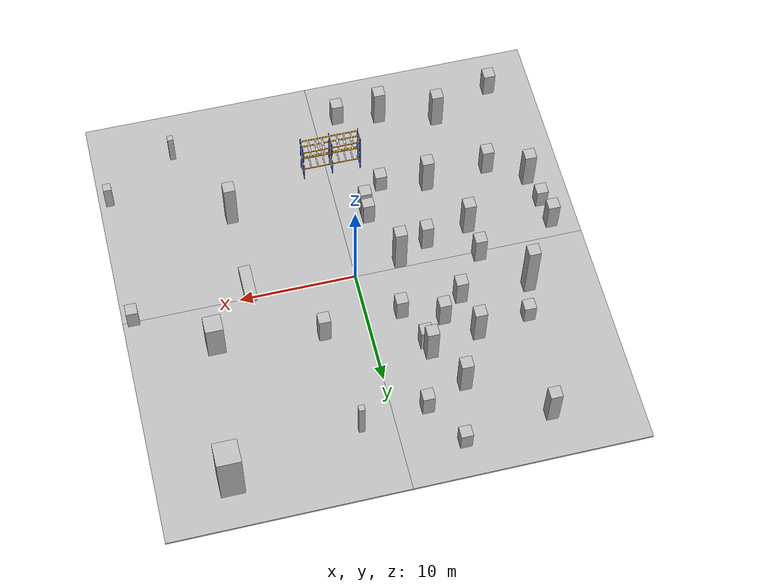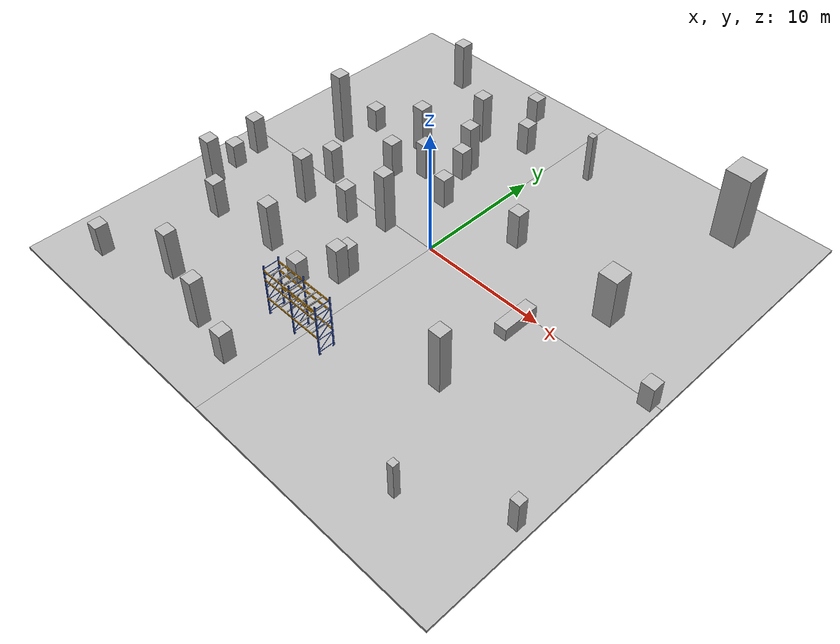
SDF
<sdf version="1.4">
 <world name="default">
  <include><uri>model://sun</uri></include>
  <model name="gd1">
   <static>1</static>
   <link name="chassis">
    <pose>10 10 -0.1 0 0 0</pose>
    <collision name="collision"><geometry><box><size>20 20 0.2</size></box></geometry></collision>
    <visual name="visual">
     <geometry>
      <mesh><uri>model://ground_surface/meshes/simple_box.dae</uri><scale>20 20 0.2</scale></mesh>
     </geometry>
     <material>
      <script>
       <uri>model://ground_surface/materials/scripts</uri>
       <uri>model://ground_surface/materials/textures</uri>
       <name>BrickBox/Ground</name>
      </script>
     </material>
    </visual>
   </link>
  </model>
  <model name="gd2">
   <static>1</static>
   <link name="chassis">
    <pose>10 -10 -0.1 0 0 0</pose>
    <collision name="collision"><geometry><box><size>20 20 0.2</size></box></geometry></collision>
    <visual name="visual">
     <geometry>
      <mesh><uri>model://ground_surface/meshes/simple_box.dae</uri><scale>20 20 0.2</scale></mesh>
     </geometry>
     <material>
      <script>
       <uri>model://ground_surface/materials/scripts</uri>
       <uri>model://ground_surface/materials/textures</uri>
       <name>BrickBox/Ground</name>
      </script>
     </material>
    </visual>
   </link>
  </model>
  <model name="gd3">
   <static>1</static>
   <link name="chassis">
    <pose>-10 10 -0.1 0 0 0</pose>
    <collision name="collision"><geometry><box><size>20 20 0.2</size></box></geometry></collision>
    <visual name="visual">
     <geometry>
      <mesh><uri>model://ground_surface/meshes/simple_box.dae</uri><scale>20 20 0.2</scale></mesh>
     </geometry>
     <material>
      <script>
       <uri>model://ground_surface/materials/scripts</uri>
       <uri>model://ground_surface/materials/textures</uri>
       <name>BrickBox/Ground</name>
      </script>
     </material>
    </visual>
   </link>
  </model>
  <model name="gd4">
   <static>1</static>
   <link name="chassis">
    <pose>-10 -10 -0.1 0 0 0</pose>
    <collision name="collision"><geometry><box><size>20 20 0.2</size></box></geometry></collision>
    <visual name="visual">
     <geometry>
      <mesh><uri>model://ground_surface/meshes/simple_box.dae</uri><scale>20 20 0.2</scale></mesh>
     </geometry>
     <material>
      <script>
       <uri>model://ground_surface/materials/scripts</uri>
       <uri>model://ground_surface/materials/textures</uri>
       <name>BrickBox/Ground</name>
      </script>
     </material>
    </visual>
   </link>
  </model>
  <model name="bb1">
   <static>1</static>
   <link name="chassis">
    <pose>12.88407 -15.56919 1.5 0 -0 0</pose>
    <collision name="collision"><geometry><box><size>0.5 0.5 3</size></box></geometry></collision>
    <visual name="visual">
     <geometry><mesh><uri>model://brick_box_2/meshes/simple_box.dae</uri><scale>0.5 0.5 3</scale></mesh></geometry>
     <material>
      <script>
       <uri>model://brick_box_2/materials/scripts</uri>
       <uri>model://brick_box_2/materials/textures</uri>
       <name>BrickBox/Flower</name>
      </script>
     </material>
    </visual>
   </link>
  </model>
  <model name="bb2">
   <static>1</static>
   <link name="chassis">
    <pose>19.0671 -12.13179 1.25 0 -0 0</pose>
    <collision name="collision"><geometry><box><size>0.7 0.7 2.5</size></box></geometry></collision>
    <visual name="visual">
     <geometry>
      <mesh><uri>model://brick_box_1/meshes/simple_box.dae</uri><scale>0.7 0.7 2.5</scale></mesh>
     </geometry>
     <material>
      <script>
       <uri>model://brick_box_1/materials/scripts</uri>
       <uri>model://brick_box_1/materials/textures</uri>
       <name>BrickBox/Diffuse</name>
      </script>
     </material>
    </visual>
   </link>
  </model>
  <model name="bb3">
   <static>1</static>
   <link name="chassis">
    <pose>19.0671 -0.13179 1 0 -0 0</pose>
    <collision name="collision"><geometry><box><size>1 1 2</size></box></geometry></collision>
    <visual name="visual">
     <geometry><mesh><uri>model://brick_box_1/meshes/simple_box.dae</uri><scale>1 1 2</scale></mesh></geometry>
     <material>
      <script>
       <uri>model://brick_box_1/materials/scripts</uri>
       <uri>model://brick_box_1/materials/textures</uri>
       <name>BrickBox/Diffuse</name>
      </script>
     </material>
    </visual>
   </link>
  </model>
  <model name="bb4">
   <static>1</static>
   <link name="chassis">
    <pose>9.0671 -8.13179 2.5 0 -0 0</pose>
    <collision name="collision"><geometry><box><size>1 1 5</size></box></geometry></collision>
    <visual name="visual">
     <geometry><mesh><uri>model://brick_box_3/meshes/simple_box.dae</uri><scale>1 1 5</scale></mesh></geometry>
     <material>
      <script>
       <uri>model://brick_box_3/materials/scripts</uri>
       <uri>model://brick_box_3/materials/textures</uri>
       <name>BrickBox/Sea</name>
      </script>
     </material>
    </visual>
   </link>
  </model>
  <model name="bb5">
   <static>1</static>
   <link name="chassis">
    <pose>12.81419 3.85419 2 0 -0 0</pose>
    <collision name="collision"><geometry><box><size>1.5 1.5 4</size></box></geometry></collision>
    <visual name="visual">
     <geometry><mesh><uri>model://brick_box_2/meshes/simple_box.dae</uri><scale>1.5 1.5 4</scale></mesh></geometry>
     <material>
      <script>
       <uri>model://brick_box_2/materials/scripts</uri>
       <uri>model://brick_box_2/materials/textures</uri>
       <name>BrickBox/Flower</name>
      </script>
     </material>
    </visual>
   </link>
  </model>
  <model name="bb6">
   <static>1</static>
   <link name="chassis">
    <pose>-10.67108 -14.11682 2 0 -0 0</pose>
    <collision name="collision"><geometry><box><size>1 1 4</size></box></geometry></collision>
    <visual name="visual">
     <geometry><mesh><uri>model://brick_box_1/meshes/simple_box.dae</uri><scale>1 1 4</scale></mesh></geometry>
     <material>
      <script>
       <uri>model://brick_box_1/materials/scripts</uri>
       <uri>model://brick_box_1/materials/textures</uri>
       <name>BrickBox/Diffuse</name>
      </script>
     </material>
    </visual>
   </link>
  </model>
  <model name="bb7">
   <static>1</static>
   <link name="chassis">
    <pose>-13.67108 -8.11682 1.5 0 -0 0</pose>
    <collision name="collision"><geometry><box><size>1 1 3</size></box></geometry></collision>
    <visual name="visual">
     <geometry><mesh><uri>model://brick_box_2/meshes/simple_box.dae</uri><scale>1 1 3</scale></mesh></geometry>
     <material>
      <script>
       <uri>model://brick_box_2/materials/scripts</uri>
       <uri>model://brick_box_2/materials/textures</uri>
       <name>BrickBox/Flower</name>
      </script>
     </material>
    </visual>
   </link>
  </model>
  <model name="bb5">
   <static>1</static>
   <link name="chassis">
    <pose>-8.1 4.01925 1.5 0 -0 0</pose>
    <collision name="collision"><geometry><box><size>1 1 3</size></box></geometry></collision>
    <visual name="visual">
     <geometry><mesh><uri>model://brick_box_1/meshes/simple_box.dae</uri><scale>1 1 3</scale></mesh></geometry>
     <material>
      <script>
       <uri>model://brick_box_1/materials/scripts</uri>
       <uri>model://brick_box_1/materials/textures</uri>
       <name>BrickBox/Diffuse</name>
      </script>
     </material>
    </visual>
   </link>
  </model>
  <model name="bb9">
   <static>1</static>
   <link name="chassis">
    <pose>-14 4.25 3 0 -0 0</pose>
    <collision name="collision"><geometry><box><size>1 1 6</size></box></geometry></collision>
    <visual name="visual">
     <geometry><mesh><uri>model://brick_box_3/meshes/simple_box.dae</uri><scale>1 1 6</scale></mesh></geometry>
     <material>
      <script>
       <uri>model://brick_box_3/materials/scripts</uri>
       <uri>model://brick_box_3/materials/textures</uri>
       <name>BrickBox/Sea</name>
      </script>
     </material>
    </visual>
   </link>
  </model>
  <model name="bb10">
   <static>1</static>
   <link name="chassis">
    <pose>14 16.25 3 0 -0 0</pose>
    <collision name="collision"><geometry><box><size>2 2 6</size></box></geometry></collision>
    <visual name="visual">
     <geometry><mesh><uri>model://brick_box_3/meshes/simple_box.dae</uri><scale>2 2 6</scale></mesh></geometry>
     <material>
      <script>
       <uri>model://brick_box_3/materials/scripts</uri>
       <uri>model://brick_box_3/materials/textures</uri>
       <name>BrickBox/Sea</name>
      </script>
     </material>
    </visual>
   </link>
  </model>
  <model name="bb11">
   <static>1</static>
   <link name="chassis">
    <pose>-6.335 12 2 0 -0 0</pose>
    <collision name="collision"><geometry><box><size>1 1 4</size></box></geometry></collision>
    <visual name="visual">
     <geometry><mesh><uri>model://brick_box_1/meshes/simple_box.dae</uri><scale>1 1 4</scale></mesh></geometry>
     <material>
      <script>
       <uri>model://brick_box_1/materials/scripts</uri>
       <uri>model://brick_box_1/materials/textures</uri>
       <name>BrickBox/Diffuse</name>
      </script>
     </material>
    </visual>
   </link>
  </model>
  <model name="bb12">
   <static>1</static>
   <link name="chassis">
    <pose>2.81419 13.99419 2 0 -0 0</pose>
    <collision name="collision"><geometry><box><size>0.5 0.5 4</size></box></geometry></collision>
    <visual name="visual">
     <geometry><mesh><uri>model://brick_box_2/meshes/simple_box.dae</uri><scale>0.5 0.5 4</scale></mesh></geometry>
     <material>
      <script>
       <uri>model://brick_box_2/materials/scripts</uri>
       <uri>model://brick_box_2/materials/textures</uri>
       <name>BrickBox/Flower</name>
      </script>
     </material>
    </visual>
   </link>
  </model>
  <model name="bb13">
   <static>1</static>
   <link name="chassis">
    <pose>3.81419 4.85419 1.5 0 -0 0</pose>
    <collision name="collision"><geometry><box><size>1 1 3</size></box></geometry></collision>
    <visual name="visual">
     <geometry><mesh><uri>model://brick_box_2/meshes/simple_box.dae</uri><scale>1 1 3</scale></mesh></geometry>
     <material>
      <script>
       <uri>model://brick_box_2/materials/scripts</uri>
       <uri>model://brick_box_2/materials/textures</uri>
       <name>BrickBox/Flower</name>
      </script>
     </material>
    </visual>
   </link>
  </model>
  <model name="bb14">
   <static>1</static>
   <link name="chassis">
    <pose>9.0671 -1.13179 0.5 0 -0 0</pose>
    <collision name="collision"><geometry><box><size>1 3 1</size></box></geometry></collision>
    <visual name="visual">
     <geometry><mesh><uri>model://brick_box_3/meshes/simple_box.dae</uri><scale>1 3 1</scale></mesh></geometry>
     <material>
      <script>
       <uri>model://brick_box_3/materials/scripts</uri>
       <uri>model://brick_box_3/materials/textures</uri>
       <name>BrickBox/Sea</name>
      </script>
     </material>
    </visual>
   </link>
  </model>
  <model name="brick_box_1_1">
   <static>1</static>
   <link name="chassis">
    <pose>0 0 1.5 0 -0 0</pose>
    <collision name="collision"><geometry><box><size>1 1 3</size></box></geometry></collision>
    <visual name="visual">
     <geometry><mesh><uri>model://brick_box_1/meshes/simple_box.dae</uri><scale>1 1 3</scale></mesh></geometry>
     <material>
      <script>
       <uri>model://brick_box_1/materials/scripts</uri>
       <uri>model://brick_box_1/materials/textures</uri>
       <name>BrickBox/Diffuse</name>
      </script>
     </material>
    </visual>
   </link>
   <pose>-2.37672 -6.40251 0 0 -0 0</pose>
  </model>
  <model name="brick_box_2_1">
   <static>1</static>
   <link name="chassis">
    <pose>0 0 1.5 0 -0 0</pose>
    <collision name="collision"><geometry><box><size>1 1 3</size></box></geometry></collision>
    <visual name="visual">
     <geometry><mesh><uri>model://brick_box_2/meshes/simple_box.dae</uri><scale>1 1 3</scale></mesh></geometry>
     <material>
      <script>
       <uri>model://brick_box_2/materials/scripts</uri>
       <uri>model://brick_box_2/materials/textures</uri>
       <name>BrickBox/Flower</name>
      </script>
     </material>
    </visual>
   </link>
   <pose>-6.20459 5.6704 0 0 -0 0</pose>
  </model>
  <model name="brick_box_2_2">
   <static>1</static>
   <link name="chassis">
    <pose>0 0 2 0 -0 0</pose>
    <collision name="collision"><geometry><box><size>1 1 4</size></box></geometry></collision>
    <visual name="visual">
     <geometry><mesh><uri>model://brick_box_2/meshes/simple_box.dae</uri><scale>1 1 4</scale></mesh></geometry>
     <material>
      <script>
       <uri>model://brick_box_2/materials/scripts</uri>
       <uri>model://brick_box_2/materials/textures</uri>
       <name>BrickBox/Flower</name>
      </script>
     </material>
    </visual>
   </link>
   <pose>-12.48484 16.19184 0 0 -0 0</pose>
  </model>
  <model name="brick_box_1_3">
   <static>1</static>
   <link name="chassis">
    <pose>0 0 2 0 -0 0</pose>
    <collision name="collision"><geometry><box><size>1 1 4</size></box></geometry></collision>
    <visual name="visual">
     <geometry><mesh><uri>model://brick_box_1/meshes/simple_box.dae</uri><scale>1 1 4</scale></mesh></geometry>
     <material>
      <script>
       <uri>model://brick_box_1/materials/scripts</uri>
       <uri>model://brick_box_1/materials/textures</uri>
       <name>BrickBox/Diffuse</name>
      </script>
     </material>
    </visual>
   </link>
   <pose>-8.13545 -7.56426 0 0 -0 0</pose>
  </model>
  <model name="brick_box_2_3">
   <static>1</static>
   <link name="chassis">
    <pose>0 0 2 0 -0 0</pose>
    <collision name="collision"><geometry><box><size>1 1 4</size></box></geometry></collision>
    <visual name="visual">
     <geometry><mesh><uri>model://brick_box_2/meshes/simple_box.dae</uri><scale>1 1 4</scale></mesh></geometry>
     <material>
      <script>
       <uri>model://brick_box_2/materials/scripts</uri>
       <uri>model://brick_box_2/materials/textures</uri>
       <name>BrickBox/Flower</name>
      </script>
     </material>
    </visual>
   </link>
   <pose>-16.83918 -6.1609 0 0 -0 0</pose>
  </model>
  <model name="brick_box_1_5">
   <static>1</static>
   <link name="chassis">
    <pose>0 0 2 0 -0 0</pose>
    <collision name="collision"><geometry><box><size>1 1 4</size></box></geometry></collision>
    <visual name="visual">
     <geometry><mesh><uri>model://brick_box_1/meshes/simple_box.dae</uri><scale>1 1 4</scale></mesh></geometry>
     <material>
      <script>
       <uri>model://brick_box_1/materials/scripts</uri>
       <uri>model://brick_box_1/materials/textures</uri>
       <name>BrickBox/Diffuse</name>
      </script>
     </material>
    </visual>
   </link>
   <pose>-4.39202 8.55641 0 0 -0 0</pose>
  </model>
  <model name="brick_box_2_6">
   <static>1</static>
   <link name="chassis">
    <pose>0 0 1.5 0 -0 0</pose>
    <collision name="collision"><geometry><box><size>1 1 3</size></box></geometry></collision>
    <visual name="visual">
     <geometry><mesh><uri>model://brick_box_2/meshes/simple_box.dae</uri><scale>1 1 3</scale></mesh></geometry>
     <material>
      <script>
       <uri>model://brick_box_2/materials/scripts</uri>
       <uri>model://brick_box_2/materials/textures</uri>
       <name>BrickBox/Flower</name>
      </script>
     </material>
    </visual>
   </link>
   <pose>-10.71658 0.404974 0 0 -0 0</pose>
  </model>
  <model name="brick_box_1_8">
   <static>1</static>
   <link name="chassis">
    <pose>0 0 2 0 -0 0</pose>
    <collision name="collision"><geometry><box><size>1 1 4</size></box></geometry></collision>
    <visual name="visual">
     <geometry><mesh><uri>model://brick_box_1/meshes/simple_box.dae</uri><scale>1 1 4</scale></mesh></geometry>
     <material>
      <script>
       <uri>model://brick_box_1/materials/scripts</uri>
       <uri>model://brick_box_1/materials/textures</uri>
       <name>BrickBox/Diffuse</name>
      </script>
     </material>
    </visual>
   </link>
   <pose>-10.49281 -2.5476 0 0 -0 0</pose>
  </model>
  <model name="Shelves high">
   <static>1</static>
   <link name="link">
    <collision name="collision">
     <geometry>
      <mesh><uri>model://shelves_high/meshes/shelves_high_collision.dae</uri><scale>1 1.2 1.2</scale></mesh>
     </geometry>
    </collision>
    <visual name="visual">
     <geometry>
      <mesh><uri>model://shelves_high/meshes/shelves_high.dae</uri><scale>1 1.2 1.2</scale></mesh>
     </geometry>
    </visual>
   </link>
   <pose>-0.465321 -10.6767 0 0 -0 0</pose>
  </model>
  <model name="brick_box_2_9">
   <static>1</static>
   <link name="chassis">
    <pose>0 0 2 0 -0 0</pose>
    <collision name="collision"><geometry><box><size>1 1 4</size></box></geometry></collision>
    <visual name="visual">
     <geometry><mesh><uri>model://brick_box_2/meshes/simple_box.dae</uri><scale>1 1 4</scale></mesh></geometry>
     <material>
      <script>
       <uri>model://brick_box_2/materials/scripts</uri>
       <uri>model://brick_box_2/materials/textures</uri>
       <name>BrickBox/Flower</name>
      </script>
     </material>
    </visual>
   </link>
   <pose>-5.76183 -15.5229 0 0 -0 0</pose>
  </model>
  <model name="brick_box_2_10">
   <static>1</static>
   <link name="chassis">
    <pose>0 0 1 0 -0 0</pose>
    <collision name="collision"><geometry><box><size>1 1 2</size></box></geometry></collision>
    <visual name="visual">
     <geometry><mesh><uri>model://brick_box_2/meshes/simple_box.dae</uri><scale>1 1 2</scale></mesh></geometry>
     <material>
      <script>
       <uri>model://brick_box_2/materials/scripts</uri>
       <uri>model://brick_box_2/materials/textures</uri>
       <name>BrickBox/Flower</name>
      </script>
     </material>
    </visual>
   </link>
   <pose>-13.17 7.00064 0 0 -0 0</pose>
  </model>
  <model name="brick_box_2_11">
   <static>1</static>
   <link name="chassis">
    <pose>0 0 2.5 0 -0 0</pose>
    <collision name="collision"><geometry><box><size>1 1 5</size></box></geometry></collision>
    <visual name="visual">
     <geometry><mesh><uri>model://brick_box_2/meshes/simple_box.dae</uri><scale>1 1 5</scale></mesh></geometry>
     <material>
      <script>
       <uri>model://brick_box_2/materials/scripts</uri>
       <uri>model://brick_box_2/materials/textures</uri>
       <name>BrickBox/Flower</name>
      </script>
     </material>
    </visual>
   </link>
   <pose>-3.97626 -0.552348 0 0 -0 0</pose>
  </model>
  <model name="brick_box_3_4">
   <static>1</static>
   <link name="chassis">
    <pose>0 0 2 0 -0 0</pose>
    <collision name="collision"><geometry><box><size>1 1 4</size></box></geometry></collision>
    <visual name="visual">
     <geometry><mesh><uri>model://brick_box_3/meshes/simple_box.dae</uri><scale>1 1 4</scale></mesh></geometry>
     <material>
      <script>
       <uri>model://brick_box_3/materials/scripts</uri>
       <uri>model://brick_box_3/materials/textures</uri>
       <name>BrickBox/Sea</name>
      </script>
     </material>
    </visual>
   </link>
   <pose>-8.63812 7.71492 0 0 -0 0</pose>
  </model>
  <model name="brick_box_1_10">
   <static>1</static>
   <link name="chassis">
    <pose>0 0 1.5 0 -0 0</pose>
    <collision name="collision"><geometry><box><size>1 1 3</size></box></geometry></collision>
    <visual name="visual">
     <geometry><mesh><uri>model://brick_box_1/meshes/simple_box.dae</uri><scale>1 1 3</scale></mesh></geometry>
     <material>
      <script>
       <uri>model://brick_box_1/materials/scripts</uri>
       <uri>model://brick_box_1/materials/textures</uri>
       <name>BrickBox/Diffuse</name>
      </script>
     </material>
    </visual>
   </link>
   <pose>-17.63241 -1.44559 0 0 -0 0</pose>
  </model>
  <model name="brick_box_2_12">
   <static>1</static>
   <link name="chassis">
    <pose>0 0 1 0 -0 0</pose>
    <collision name="collision"><geometry><box><size>1 1 2</size></box></geometry></collision>
    <visual name="visual">
     <geometry><mesh><uri>model://brick_box_2/meshes/simple_box.dae</uri><scale>1 1 2</scale></mesh></geometry>
     <material>
      <script>
       <uri>model://brick_box_2/materials/scripts</uri>
       <uri>model://brick_box_2/materials/textures</uri>
       <name>BrickBox/Flower</name>
      </script>
     </material>
    </visual>
   </link>
   <pose>-4.20972 -8.46147 0 0 -0 0</pose>
  </model>
  <model name="brick_box_3_9">
   <static>1</static>
   <link name="chassis">
    <pose>0 0 1.5 0 -0 0</pose>
    <collision name="collision"><geometry><box><size>1 1 3</size></box></geometry></collision>
    <visual name="visual">
     <geometry><mesh><uri>model://brick_box_3/meshes/simple_box.dae</uri><scale>1 1 3</scale></mesh></geometry>
     <material>
      <script>
       <uri>model://brick_box_3/materials/scripts</uri>
       <uri>model://brick_box_3/materials/textures</uri>
       <name>BrickBox/Sea</name>
      </script>
     </material>
    </visual>
   </link>
   <pose>-6.64863 -1.85045 0 0 -0 0</pose>
  </model>
  <model name="brick_box_1_11">
   <static>1</static>
   <link name="chassis">
    <pose>0 0 1 0 -0 0</pose>
    <collision name="collision"><geometry><box><size>1 1 2</size></box></geometry></collision>
    <visual name="visual">
     <geometry><mesh><uri>model://brick_box_1/meshes/simple_box.dae</uri><scale>1 1 2</scale></mesh></geometry>
     <material>
      <script>
       <uri>model://brick_box_1/materials/scripts</uri>
       <uri>model://brick_box_1/materials/textures</uri>
       <name>BrickBox/Diffuse</name>
      </script>
     </material>
    </visual>
   </link>
   <pose>-5.03514 16.98118 0 0 -0 0</pose>
  </model>
  <model name="brick_box_2_14">
   <static>1</static>
   <link name="chassis">
    <pose>0 0 1 0 -0 0</pose>
    <collision name="collision"><geometry><box><size>1 1 2</size></box></geometry></collision>
    <visual name="visual">
     <geometry><mesh><uri>model://brick_box_2/meshes/simple_box.dae</uri><scale>1 1 2</scale></mesh></geometry>
     <material>
      <script>
       <uri>model://brick_box_2/materials/scripts</uri>
       <uri>model://brick_box_2/materials/textures</uri>
       <name>BrickBox/Flower</name>
      </script>
     </material>
    </visual>
   </link>
   <pose>-17.35221 -3.7337 0 0 -0 0</pose>
  </model>
  <model name="brick_box_3_11">
   <static>1</static>
   <link name="chassis">
    <pose>0 0 0.5 0 -0 0</pose>
    <collision name="collision"><geometry><box><size>1 1 4</size></box></geometry></collision>
    <visual name="visual">
     <geometry><mesh><uri>model://brick_box_3/meshes/simple_box.dae</uri><scale>1 1 4</scale></mesh></geometry>
     <material>
      <script>
       <uri>model://brick_box_3/materials/scripts</uri>
       <uri>model://brick_box_3/materials/textures</uri>
       <name>BrickBox/Sea</name>
      </script>
     </material>
    </visual>
   </link>
   <pose>-2.09803 -16.1947 0 0 -0 0</pose>
  </model>
  <model name="brick_box_3_13">
   <static>1</static>
   <link name="chassis">
    <pose>0 0 0.5 0 -0 0</pose>
    <collision name="collision"><geometry><box><size>1 1 4</size></box></geometry></collision>
    <visual name="visual">
     <geometry><mesh><uri>model://brick_box_3/meshes/simple_box.dae</uri><scale>1 1 4</scale></mesh></geometry>
     <material>
      <script>
       <uri>model://brick_box_3/materials/scripts</uri>
       <uri>model://brick_box_3/materials/textures</uri>
       <name>BrickBox/Sea</name>
      </script>
     </material>
    </visual>
   </link>
   <pose>-2.39601 -5.50375 0 0 -0 0</pose>
  </model>
  <model name="brick_box_2_19">
   <static>1</static>
   <link name="chassis">
    <pose>0 0 0.5 0 -0 0</pose>
    <collision name="collision"><geometry><box><size>1 1 4</size></box></geometry></collision>
    <visual name="visual">
     <geometry><mesh><uri>model://brick_box_2/meshes/simple_box.dae</uri><scale>1 1 4</scale></mesh></geometry>
     <material>
      <script>
       <uri>model://brick_box_2/materials/scripts</uri>
       <uri>model://brick_box_2/materials/textures</uri>
       <name>BrickBox/Flower</name>
      </script>
     </material>
    </visual>
   </link>
   <pose>-4.17763 7.52462 0 0 -0 0</pose>
  </model>
  <model name="brick_box_2_23">
   <static>1</static>
   <link name="chassis">
    <pose>0 0 0.5 0 -0 0</pose>
    <collision name="collision"><geometry><box><size>1 1 4</size></box></geometry></collision>
    <visual name="visual">
     <geometry><mesh><uri>model://brick_box_2/meshes/simple_box.dae</uri><scale>1 1 4</scale></mesh></geometry>
     <material>
      <script>
       <uri>model://brick_box_2/materials/scripts</uri>
       <uri>model://brick_box_2/materials/textures</uri>
       <name>BrickBox/Flower</name>
      </script>
     </material>
    </visual>
   </link>
   <pose>-2.82988 13.3422 0 0 -0 0</pose>
  </model>
  <model name="brick_box_2_25">
   <static>1</static>
   <link name="chassis">
    <pose>0 0 0.5 0 -0 0</pose>
    <collision name="collision"><geometry><box><size>1 1 4</size></box></geometry></collision>
    <visual name="visual">
     <geometry><mesh><uri>model://brick_box_2/meshes/simple_box.dae</uri><scale>1 1 4</scale></mesh></geometry>
     <material>
      <script>
       <uri>model://brick_box_2/materials/scripts</uri>
       <uri>model://brick_box_2/materials/textures</uri>
       <name>BrickBox/Flower</name>
      </script>
     </material>
    </visual>
   </link>
   <pose>-16.073 -16.3131 0 0 -0 0</pose>
  </model>
  <model name="brick_box_2_26">
   <static>1</static>
   <link name="chassis">
    <pose>0 0 0.5 0 -0 0</pose>
    <collision name="collision"><geometry><box><size>1 1 4</size></box></geometry></collision>
    <visual name="visual">
     <geometry><mesh><uri>model://brick_box_2/meshes/simple_box.dae</uri><scale>1 1 4</scale></mesh></geometry>
     <material>
      <script>
       <uri>model://brick_box_2/materials/scripts</uri>
       <uri>model://brick_box_2/materials/textures</uri>
       <name>BrickBox/Flower</name>
      </script>
     </material>
    </visual>
   </link>
   <pose>-2.90085 4.29517 0 0 -0 0</pose>
  </model>
 </world>
</sdf>
